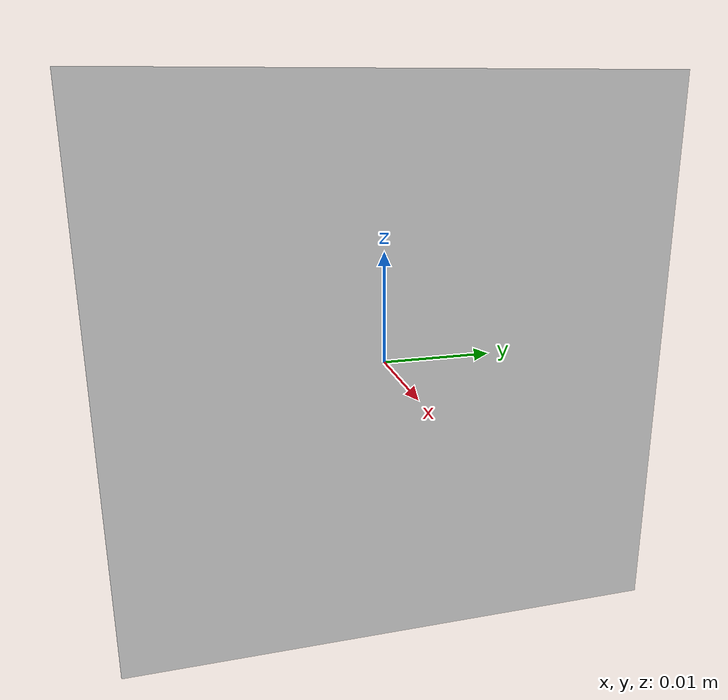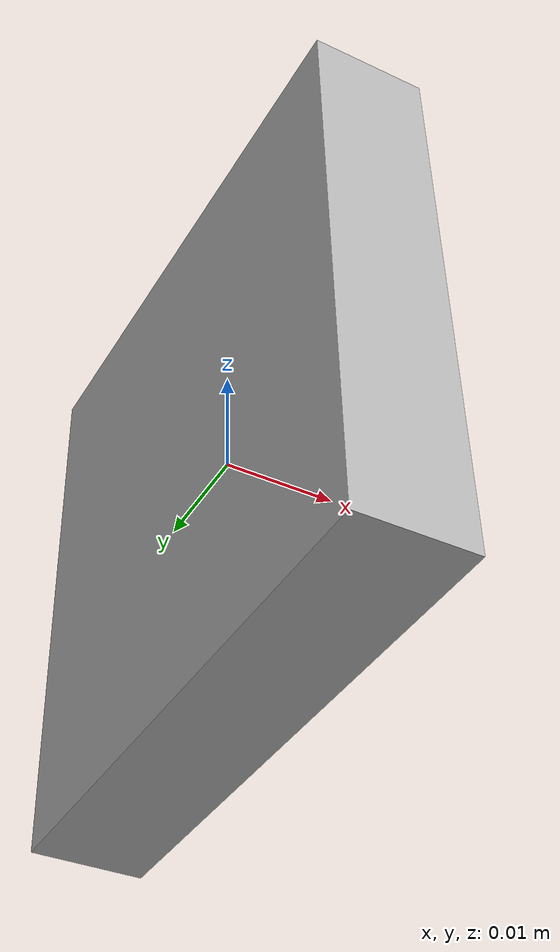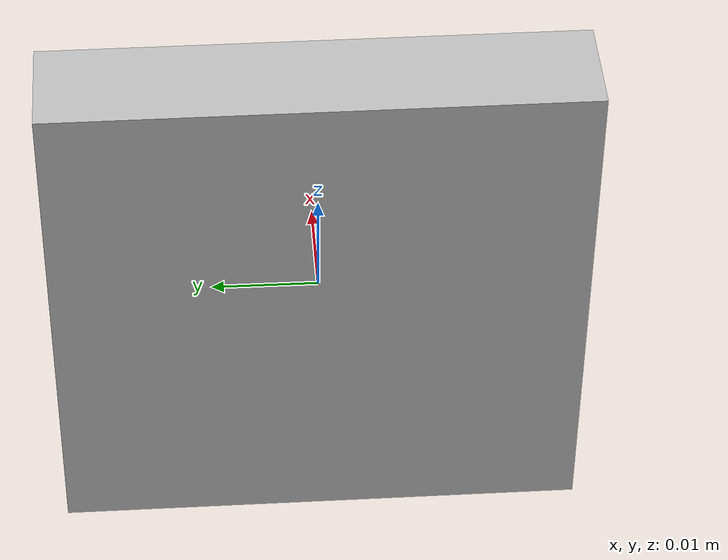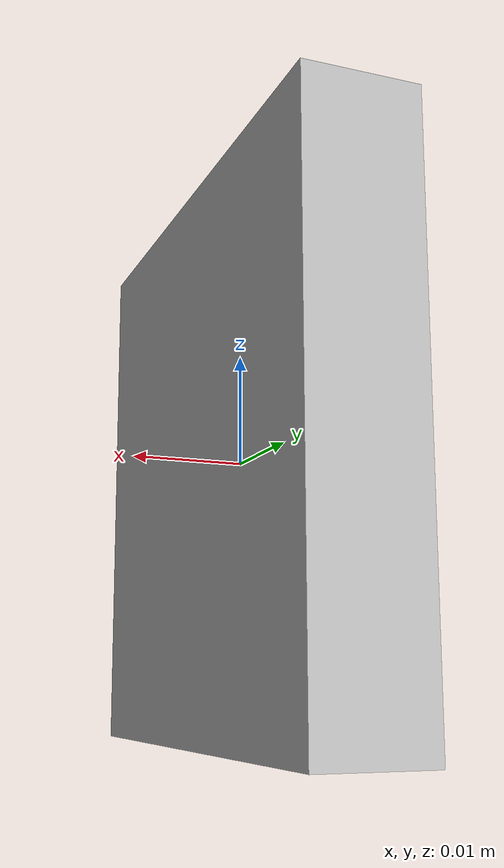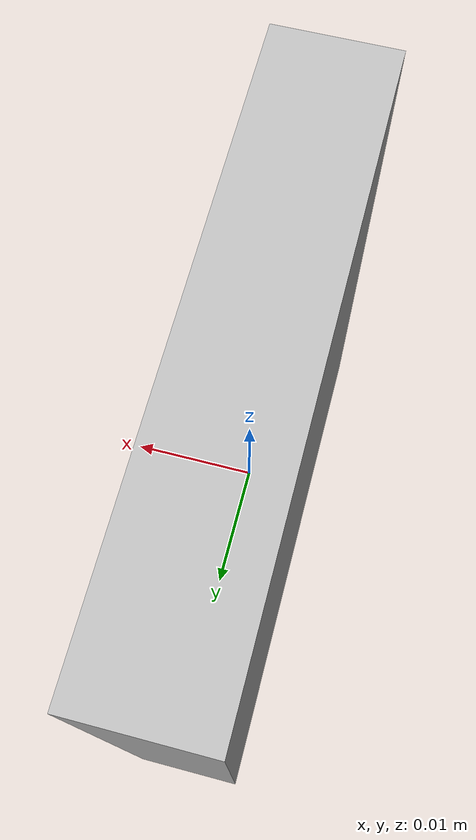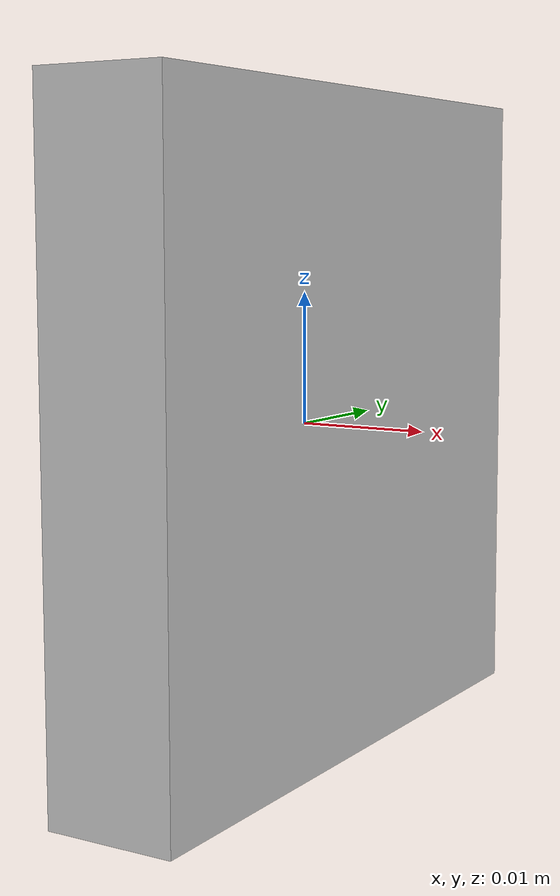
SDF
<?xml version="1.0" ?>
<sdf version="1.5">
  <model name="cameracy">
    <link name="link">
      <visual name="visual">
        <pose frame=''>0 0 0 0 0 0</pose>
        <geometry>
          <box>
            <size>0.01 0.05 0.05</size>
          </box>
        </geometry>
      </visual>

      <inertial>
        <pose frame=''>0 0 0 0 0 0</pose>
        <mass>0.015</mass>
        <inertia>
          <ixx>1e-05</ixx>
          <ixy>0</ixy>
          <ixz>0</ixz>
          <iyy>1e-05</iyy>
          <iyz>0</iyz>
          <izz>1e-05</izz>
        </inertia>
      </inertial>

      <sensor type="camera" name="cameracy">
        <update_rate>50.0</update_rate>
        <camera name="head">
          <horizontal_fov>1.3962634</horizontal_fov>
          <image>
            <width>800</width>
            <height>600</height>
            <format>B8G8R8</format>
          </image>
          <clip>
            <near>0.02</near>
            <far>300</far>
          </clip>
          <noise>
            <type>gaussian</type>
            <mean>0.0</mean>
            <stddev>0.007</stddev>
          </noise>
        </camera>
        <plugin name="camera_controller" filename="libgazebo_ros_camera.so">
          <alwaysOn>true</alwaysOn>
          <updateRate>50.0</updateRate>
          <cameraName>iris/camera</cameraName>
          <imageTopicName>image_raw</imageTopicName>
          <cameraInfoTopicName>camera_info</cameraInfoTopicName>
          <frameName>/cameracy</frameName>
          <hackBaseline>0.07</hackBaseline>
          <distortionK1>0.0</distortionK1>
          <distortionK2>0.0</distortionK2>
          <distortionK3>0.0</distortionK3>
          <distortionT1>0.0</distortionT1>
          <distortionT2>0.0</distortionT2>
        </plugin>
      </sensor>
    </link>
  </model>
</sdf>
